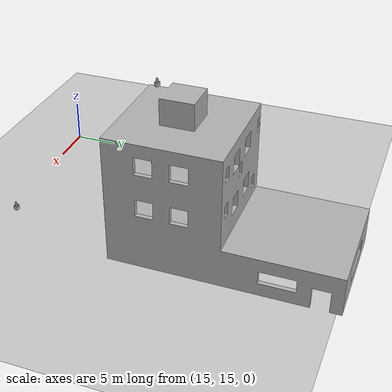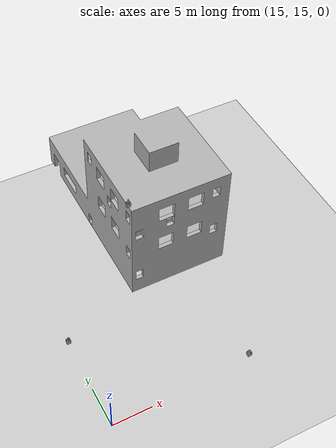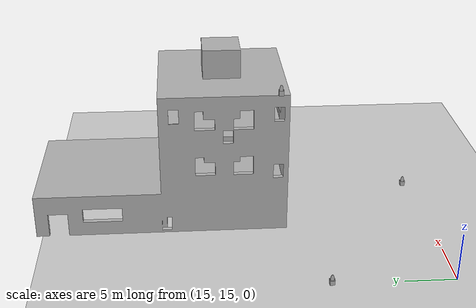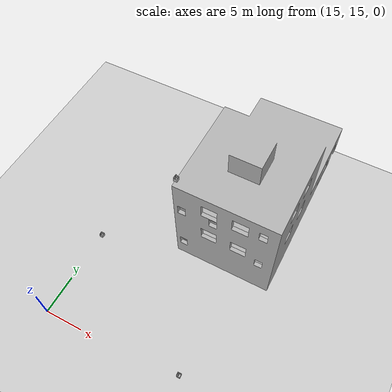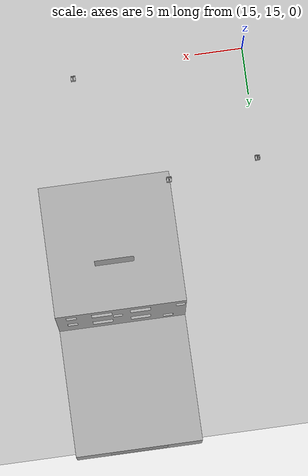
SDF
<?xml version="1.0" ?>
<!-- |    This document was autogenerated by xacro from challenge3.world.xacro         | -->
<!-- |    EDITING THIS FILE BY HAND IS NOT RECOMMENDED                                 | -->
<sdf version="1.4" xmlns:xacro="http://www.ros.org/wiki/xacro">
  <env name="GAZEBO_RESOURCE_PATH" value="/home/alex/catkin_ws/src/mbzirc2020/mbzirc_gazebo_simulation/challenge_worlds"/>
  <!-- The following is the geometric expresion for an axis rotation -->
  <!-- X'= X*cos(yaw)-Y*sin(yaw) -->
  <!-- Y'= X*sin(yaw)+Y*cos(yaw)  -->
  <world name="default">
    <model name="ground_plane_asfalt">
      <include>
        <uri>model://ground_plane_asfalt</uri>
      </include>
      <pose frame="">25.0 30.0 0 0 0 0.0 </pose>
    </model>
    <model name="cubewithflames_1">
      <include>
        <uri>model://cubewithflames</uri>
      </include>
      <pose frame="">15.0 27.0 0 0 0 0.0 </pose>
    </model>
    <model name="cubewithflames_2">
      <include>
        <uri>model://cubewithflames</uri>
      </include>
      <pose frame="">33.0 16.0 0 0 0 0.0 </pose>
    </model>
    <model name="cubewithflames_3">
      <include>
        <uri>model://cubewithflames</uri>
      </include>
      <pose frame="">32.0 50.0 0 0 0 0.0 </pose>
    </model>
    <model name="cubewithflames_4">
      <include>
        <uri>model://cubewithflames</uri>
      </include>
      <pose frame="">26.0 31.0 0 0 0 0.0 </pose>
    </model>
    <model name="cubewithflames_5">
      <include>
        <uri>model://cubewithflames</uri>
      </include>
      <pose frame="">25.0 31.0 15 0 0 0.0 </pose>
    </model>
    <model name="building">
      <include>
        <uri>model://BuildingC3</uri>
      </include>
      <pose frame="">25.0 30.0 0 0 0 0.0 </pose>
    </model>
    <light name="sun" type="directional">
      <cast_shadows>1</cast_shadows>
      <pose frame="">0 0 10 0 -0 0</pose>
      <diffuse>0.8 0.8 0.8 1</diffuse>
      <specular>0.1 0.1 0.1 1</specular>
      <attenuation>
        <range>10</range>
        <constant>0.9</constant>
        <linear>0.01</linear>
        <quadratic>0.001</quadratic>
      </attenuation>
      <direction>-0.5 0.5 -1</direction>
    </light>
    <gui fullscreen="0">
      <camera name="user_camera">
        <pose frame="">-4.01588 -6.89701 14.3505 -0 0.40453 0.863487</pose>
        <view_controller>orbit</view_controller>
        <projection_type>perspective</projection_type>
      </camera>
    </gui>
    <gravity>0 0 -9.8</gravity>
    <magnetic_field>6e-06 2.3e-05 -4.2e-05</magnetic_field>
    <atmosphere type="adiabatic"/>
    <wind>
      <linear_velocity>0.1 0.1 0</linear_velocity>
    </wind>
    <physics default="0" name="default_physics" type="ode">
      <max_step_size>0.004</max_step_size>
      <real_time_factor>1</real_time_factor>
      <real_time_update_rate>250</real_time_update_rate>
    </physics>
    <scene>
      <sky>
        <clouds>
          <speed>12</speed>
          <mean_size>0.01</mean_size>
        </clouds>
      </sky>
      <shadows>1</shadows>
      <ambient>0.4 0.4 0.4 1</ambient>
      <background>0.7 0.7 0.7 1</background>
    </scene>
    <spherical_coordinates>
      <surface_model>EARTH_WGS84</surface_model>
      <latitude_deg>0</latitude_deg>
      <longitude_deg>0</longitude_deg>
      <elevation>0</elevation>
      <heading_deg>0</heading_deg>
    </spherical_coordinates>
    <plugin filename="libWindPlugin.so" name="wind">
      <horizontal>
        <magnitude>
          <time_for_rise>10</time_for_rise>
          <sin>
            <amplitude_percent>0.05</amplitude_percent>
            <period>60</period>
          </sin>
          <noise type="gaussian">
            <mean>0</mean>
            <stddev>0.0002</stddev>
          </noise>
        </magnitude>
        <direction>
          <time_for_rise>30</time_for_rise>
          <sin>
            <amplitude>5</amplitude>
            <period>20</period>
          </sin>
          <noise type="gaussian">
            <mean>0</mean>
            <stddev>0.03</stddev>
          </noise>
        </direction>
      </horizontal>
      <vertical>
        <noise type="gaussian">
          <mean>0</mean>
          <stddev>0.03</stddev>
        </noise>
      </vertical>
    </plugin>
  </world>
</sdf>

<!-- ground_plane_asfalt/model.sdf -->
<sdf version='1.6'>
<model name='ground_plane_asfalt'>
      <static>1</static>
      <link name='link'>
        <collision name='collision'>
          <geometry>
            <plane>
              <normal>0 0 1</normal>
              <size>60 50</size>
            </plane>
          </geometry>
          <surface>
            <friction>
              <ode>
                <mu>100</mu>
                <mu2>50</mu2>
              </ode>
              <torsional>
                <ode/>
              </torsional>
            </friction>
            <contact>
              <ode/>
            </contact>
            <bounce/>
          </surface>
          <max_contacts>10</max_contacts>
        </collision>
        <visual name='visual'>
          <cast_shadows>0</cast_shadows>
          <geometry>
            <plane>
              <normal>0 0 1</normal>
              <size>60 50</size>
            </plane>
          </geometry>
          <material>
            <script>
              <uri>file://materials/mbzirc.material</uri>
              <name>mbzirc/Asfalt</name>
            </script>
          </material>
        </visual>
        <self_collide>0</self_collide>
        <kinematic>0</kinematic>
        <gravity>1</gravity>
      </link>
    </model>
    </sdf>

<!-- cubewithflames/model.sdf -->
<sdf version='1.6'>
  <model name='cubewithflames'>
    <link name='link_0'>
      <pose frame=''>-0.075 0.1 0 0 -0 0</pose>
      <inertial>
        <mass>1</mass>
        <inertia>
          <ixx>0.166667</ixx>
          <ixy>0</ixy>
          <ixz>0</ixz>
          <iyy>0.166667</iyy>
          <iyz>0</iyz>
          <izz>0.166667</izz>
        </inertia>
        <pose frame=''>0 0 0 0 -0 0</pose>
      </inertial>
      <gravity>1</gravity>
      <self_collide>0</self_collide>
      <kinematic>0</kinematic>
      <visual name='visual'>
        <pose frame=''>0 0 0 0 -0 0</pose>
        <geometry>
          <mesh>
            <uri>model://cubewithflames/meshes/Cube_fire.dae</uri>
            <scale>0.005 0.005 0.005</scale>
          </mesh>
        </geometry>
        <material>
          <lighting>1</lighting>
          <script>
            <uri>model://cubewithflames/materials/scripts</uri>
            <uri>model://cubewithflames/materials/textures</uri>
            <name>fire</name>
          </script>
          <ambient>0.3 0.3 0.3 1</ambient>
          <diffuse>0.7 0.7 0.7 1</diffuse>
          <specular>0.01 0.01 0.01 1</specular>
          <emissive>0 0 0 1</emissive>
          <shader type='vertex'>
            <normal_map>__default__</normal_map>
          </shader>
        </material>
        <cast_shadows>1</cast_shadows>
        <transparency>0</transparency>
      </visual>
      <collision name='collision'>
        <laser_retro>0</laser_retro>
        <max_contacts>10</max_contacts>
        <pose frame=''>0 0 0.0 0 -0 0</pose>
        <geometry>
          <mesh>
            <uri>model://cubewithflames/meshes/Cube_fire.dae</uri>
            <scale>0.005 0.005 0.005</scale>
          </mesh>
        </geometry>
        <surface>
          <friction>
            <ode>
              <mu>1</mu>
              <mu2>1</mu2>
              <fdir1>0 0 0</fdir1>
              <slip1>0</slip1>
              <slip2>0</slip2>
            </ode>
            <torsional>
              <coefficient>1</coefficient>
              <patch_radius>0</patch_radius>
              <surface_radius>0</surface_radius>
              <use_patch_radius>1</use_patch_radius>
              <ode>
                <slip>0</slip>
              </ode>
            </torsional>
          </friction>
          <bounce>
            <restitution_coefficient>0</restitution_coefficient>
            <threshold>1e+06</threshold>
          </bounce>
          <contact>
            <collide_without_contact>0</collide_without_contact>
            <collide_without_contact_bitmask>1</collide_without_contact_bitmask>
            <collide_bitmask>1</collide_bitmask>
            <ode>
              <soft_cfm>0</soft_cfm>
              <soft_erp>0.2</soft_erp>
              <kp>1e+13</kp>
              <kd>1</kd>
              <max_vel>0.01</max_vel>
              <min_depth>0</min_depth>
            </ode>
            <bullet>
              <split_impulse>1</split_impulse>
              <split_impulse_penetration_threshold>-0.01</split_impulse_penetration_threshold>
              <soft_cfm>0</soft_cfm>
              <soft_erp>0.2</soft_erp>
              <kp>1e+13</kp>
              <kd>1</kd>
            </bullet>
          </contact>
        </surface>
      </collision>
    </link>
    <link name='link_1'>
      <pose frame=''>0.075 -0.1 0.4 0 -0 0</pose>
      <inertial>
        <mass>1</mass>
        <inertia>
          <ixx>0.166667</ixx>
          <ixy>0</ixy>
          <ixz>0</ixz>
          <iyy>0.166667</iyy>
          <iyz>0</iyz>
          <izz>0.166667</izz>
        </inertia>
        <pose frame=''>0 0 0 0 -0 0</pose>
      </inertial>
      <gravity>1</gravity>
      <self_collide>0</self_collide>
      <kinematic>0</kinematic>
      <visual name='visual'>
        <pose frame=''>0 0 0 0 -0 0</pose>
        <geometry>
          <mesh>
            <uri>model://cubewithflames/meshes/Fire_Tongue.dae</uri>
            <scale>0.05 0.035 0.033</scale>
          </mesh>
        </geometry>
        <material>
          <lighting>1</lighting>
          <script>
            <uri>model://cubewithflames/materials/scripts</uri>
            <uri>model://cubewithflames/materials/textures</uri>
            <name>fire_tongue</name>
          </script>

          <shader type='vertex'>
            <normal_map>__default__</normal_map>
          </shader>
        </material>
        <cast_shadows>1</cast_shadows>
        <transparency>0</transparency>
      </visual>
      <collision name='collision'>
        <laser_retro>0</laser_retro>
        <max_contacts>10</max_contacts>
        <pose frame=''>0 0 0 0 -0 0</pose>
        <geometry>
          <mesh>
            <uri>model://cubewithflames/meshes/Fire_Tongue.dae</uri>
            <scale>0.05 0.035 0.033</scale>
          </mesh>
        </geometry>
        <surface>
          <friction>
            <ode>
              <mu>1</mu>
              <mu2>1</mu2>
              <fdir1>0 0 0</fdir1>
              <slip1>0</slip1>
              <slip2>0</slip2>
            </ode>
            <torsional>
              <coefficient>1</coefficient>
              <patch_radius>0</patch_radius>
              <surface_radius>0</surface_radius>
              <use_patch_radius>1</use_patch_radius>
              <ode>
                <slip>0</slip>
              </ode>
            </torsional>
          </friction>
          <bounce>
            <restitution_coefficient>0</restitution_coefficient>
            <threshold>1e+06</threshold>
          </bounce>
          <contact>
            <collide_without_contact>0</collide_without_contact>
            <collide_without_contact_bitmask>1</collide_without_contact_bitmask>
            <collide_bitmask>1</collide_bitmask>
            <ode>
              <soft_cfm>0</soft_cfm>
              <soft_erp>0.2</soft_erp>
              <kp>1e+13</kp>
              <kd>1</kd>
              <max_vel>0.01</max_vel>
              <min_depth>0</min_depth>
            </ode>
            <bullet>
              <split_impulse>1</split_impulse>
              <split_impulse_penetration_threshold>-0.01</split_impulse_penetration_threshold>
              <soft_cfm>0</soft_cfm>
              <soft_erp>0.2</soft_erp>
              <kp>1e+13</kp>
              <kd>1</kd>
            </bullet>
          </contact>
        </surface>
      </collision>
    </link>
    <joint name='link_0_JOINT_0' type='fixed'>
      <parent>link_0</parent>
      <child>link_1</child>
      <pose frame=''>0 0 0 0 -0 0</pose>
      <physics>
        <ode>
          <limit>
            <cfm>0</cfm>
            <erp>0.2</erp>
          </limit>
          <suspension>
            <cfm>0</cfm>
            <erp>0.2</erp>
          </suspension>
        </ode>
      </physics>
    </joint>
    <static>1</static>
    <allow_auto_disable>1</allow_auto_disable>
  </model>
</sdf>

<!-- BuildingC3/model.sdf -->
<sdf version='1.6'>
  <model name='BuildingC3'>
    <link name='link_0'>
      <pose frame=''>0 0 0 0 -0 0</pose>
      <inertial>
        <mass>1</mass>
        <inertia>
          <ixx>0.166667</ixx>
          <ixy>0</ixy>
          <ixz>0</ixz>
          <iyy>0.166667</iyy>
          <iyz>0</iyz>
          <izz>0.166667</izz>
        </inertia>
        <pose frame=''>0 0 0 0 -0 0</pose>
      </inertial>
      <gravity>1</gravity>
      <self_collide>0</self_collide>
      <kinematic>0</kinematic>
      <visual name='ModelPreview_0::link_0::visual_1'>
        <pose frame=''>0 0 0 0 -0 0</pose>
        <geometry>
          <mesh>
            <uri>model://BuildingC3/meshes/BuildingFloorsv2.stl</uri>
            <scale>1 1 1</scale>
          </mesh>
        </geometry>
        <material>
          <lighting>1</lighting>
          <script>
            <uri>model://BuildingC3/materials/scripts</uri>
            <uri>model://BuildingC3/materials/textures</uri>
            <name>building_floor</name>
          </script>
          <ambient>0.3 0.3 0.3 1</ambient>
          <diffuse>0.7 0.7 0.7 1</diffuse>
          <specular>0.01 0.01 0.01 1</specular>
          <emissive>0 0 0 1</emissive>
          <shader type='vertex'>
            <normal_map>__default__</normal_map>
          </shader>
        </material>
        <cast_shadows>1</cast_shadows>
        <transparency>0</transparency>
      </visual>
      <visual name='visual'>
        <pose frame=''>0 0 0 0 -0 0</pose>
        <geometry>
          <mesh>
            <uri>model://BuildingC3/meshes/BuildingHulkv2.stl</uri>
            <scale>1 1 1</scale>
          </mesh>
        </geometry>
        <material>
           <lighting>1</lighting>
          <script>
            <uri>model://BuildingC3/materials/scripts</uri>
            <uri>model://BuildingC3/materials/textures</uri>
            <name>ladrillo</name>
          </script>
          <ambient>1 0.5 0.3 1</ambient>
          <diffuse>0.7 0.7 0.7 1</diffuse>
          <specular>0.01 0.01 0.01 1</specular>
          <emissive>0 0 0 1</emissive>
          <shader type='vertex'>
            <normal_map>__default__</normal_map>
          </shader>
        </material>
        <cast_shadows>1</cast_shadows>
        <transparency>0</transparency>
      </visual>
      <collision name='collision'>
        <laser_retro>0</laser_retro>
        <max_contacts>10</max_contacts>
        <pose frame=''>0 0 0 0 -0 0</pose>
        <geometry>
          <mesh>
            <uri>model://BuildingC3/meshes/Building1Piecev2.stl</uri>
            <scale>1 1 1</scale>
          </mesh>
        </geometry>
        <surface>
          <friction>
            <ode>
              <mu>1</mu>
              <mu2>1</mu2>
              <fdir1>0 0 0</fdir1>
              <slip1>0</slip1>
              <slip2>0</slip2>
            </ode>
            <torsional>
              <coefficient>1</coefficient>
              <patch_radius>0</patch_radius>
              <surface_radius>0</surface_radius>
              <use_patch_radius>1</use_patch_radius>
              <ode>
                <slip>0</slip>
              </ode>
            </torsional>
          </friction>
          <bounce>
            <restitution_coefficient>0</restitution_coefficient>
            <threshold>1e+06</threshold>
          </bounce>
          <contact>
            <collide_without_contact>0</collide_without_contact>
            <collide_without_contact_bitmask>1</collide_without_contact_bitmask>
            <collide_bitmask>1</collide_bitmask>
            <ode>
              <soft_cfm>0</soft_cfm>
              <soft_erp>0.2</soft_erp>
              <kp>1e+13</kp>
              <kd>1</kd>
              <max_vel>0.01</max_vel>
              <min_depth>0</min_depth>
            </ode>
            <bullet>
              <split_impulse>1</split_impulse>
              <split_impulse_penetration_threshold>-0.01</split_impulse_penetration_threshold>
              <soft_cfm>0</soft_cfm>
              <soft_erp>0.2</soft_erp>
              <kp>1e+13</kp>
              <kd>1</kd>
            </bullet>
          </contact>
        </surface>
      </collision>
    </link>
    <static>1</static>
    <allow_auto_disable>1</allow_auto_disable>
  </model>
</sdf>
